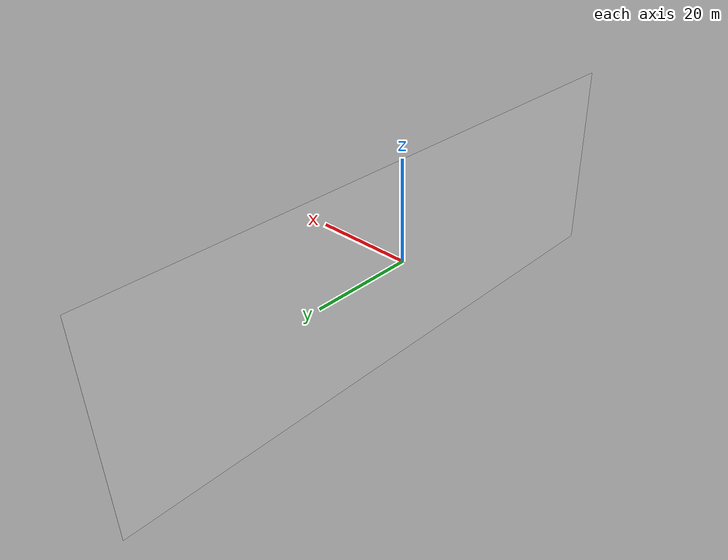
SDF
<?xml version="1.0"?>
<sdf version="1.10">
  <model name="background_wall">
    <static>true</static>
    <link name="link">
      <visual name="wall_visual">
        <geometry>
          <box>
            <size>0.002 120.0 40.0</size>
          </box>
        </geometry>
        <material>
          <ambient>1.0 1.0 1.0 1</ambient>
          <diffuse>1.0 1.0 1.0 1</diffuse>
          <pbr>
            <metal>
              <albedo_map>model://background_wall/materials/textures/hills.jpg</albedo_map>
              <metalness>0.0</metalness>
              <roughness>1.0</roughness>
            </metal>
          </pbr>
        </material>
      </visual>
    </link>
  </model>
</sdf>
